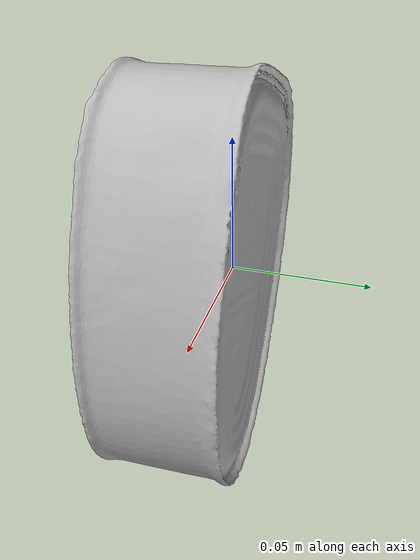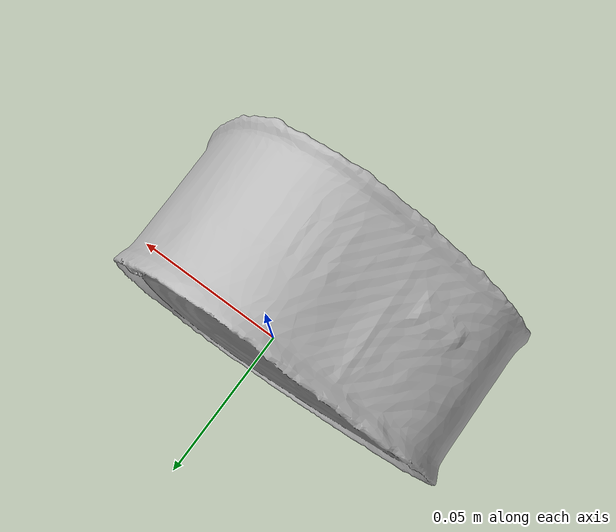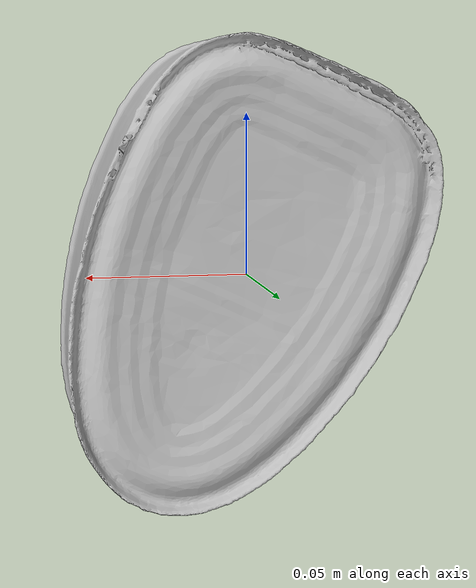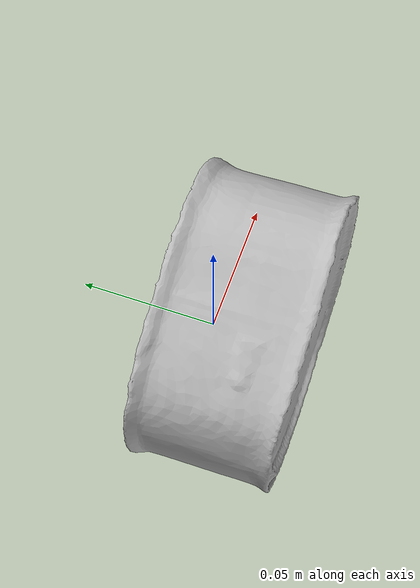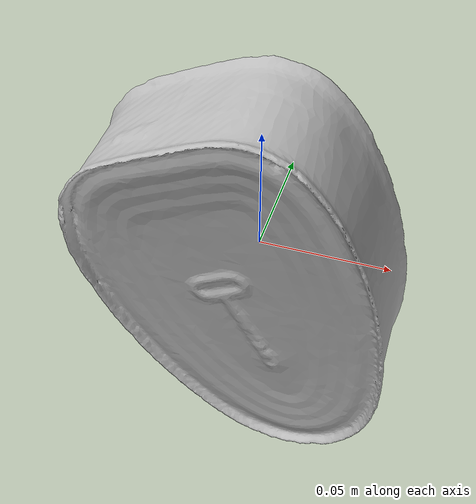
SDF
<?xml version='1.0'?>
<sdf version="1.4">
  <model name="DanishHam">
    <static>false</static>
    <link name="link">
      <inertial>
        <pose>0.0019084551192489183 -0.013692488269371361 0.0021912080662578126 2.7166829129259558 -0.005623636771639799 1.5912010171933797</pose>
        <mass>0.06082850446522045</mass>
        <inertia>
          <ixx>0.0001300614868226267</ixx>
          <ixy>7.936777172996289e-21</ixy>
          <ixz>-2.3200247356696707e-20</ixz>
          <iyy>0.00010064005286019044</iyy>
          <iyz>-4.085008010862483e-21</iyz>
          <izz>5.3671106195678324e-05</izz>
        </inertia>
      </inertial>
      <collision name="collision">
        <geometry>
          <mesh>
            <!-- Use a downsampled mesh for collisions -->
            <uri>model:///DanishHam/DanishHam_250_collision.obj</uri>
	        </mesh>
        </geometry>
        <surface>
      </surface>
      </collision>
      <visual name="visual">
        <geometry>
          <mesh>
            <uri>model:///DanishHam/DanishHam_25k_tex.obj</uri>
	        </mesh>
        </geometry>
        <material>
          <script>
            <uri>model:///DanishHam/DanishHam.material</uri>
            <name>DanishHam</name>
          </script>
        </material>
      </visual>
    </link>
  </model>
</sdf>
